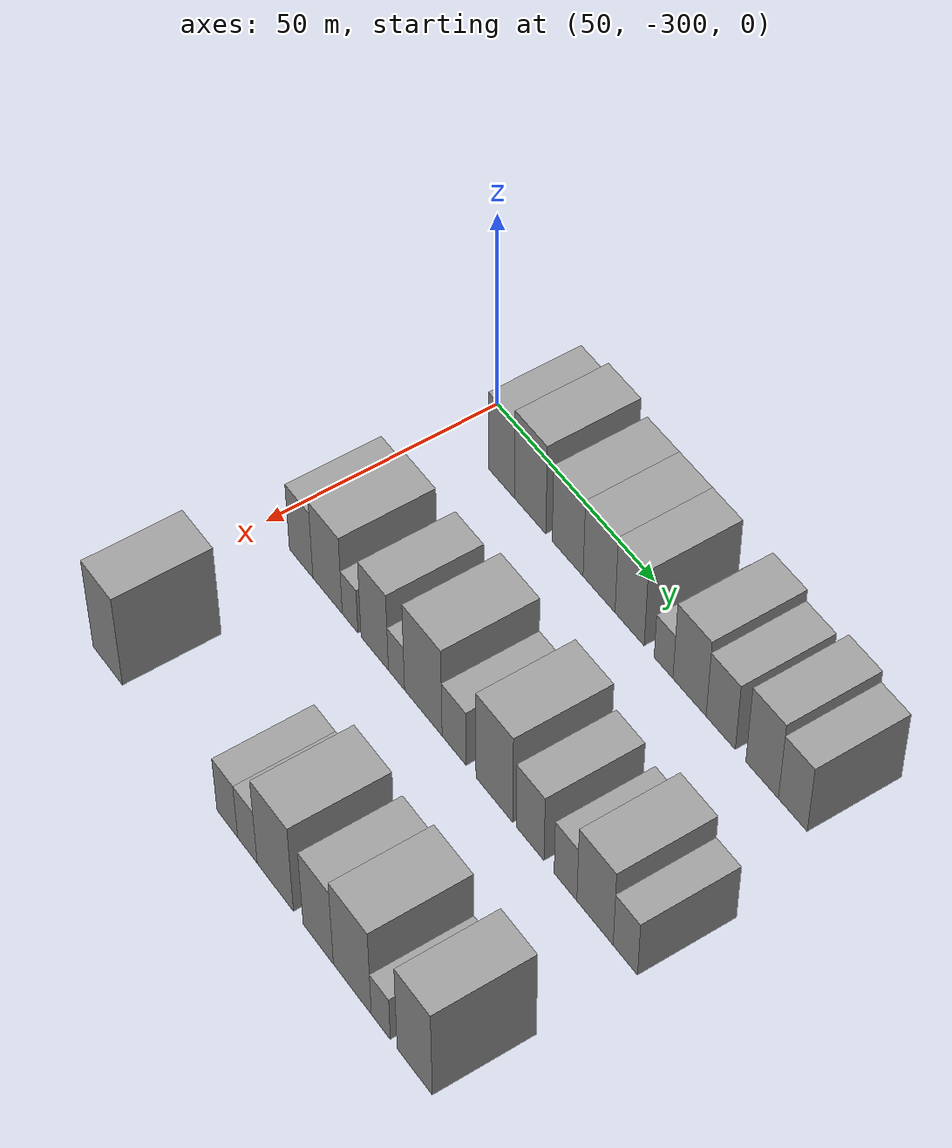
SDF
<sdf version="1.6">
 <world name="default">
  <model name="building_11">
   <static>1</static>
   <pose>50.0000 -283.8956 0 0.000000 0.000000 0.000000</pose>
   <link name="link">
    <pose>0 0 10.50 0 0 0</pose>
    <collision name="collision"><geometry><box><size>20.0000 8.4090 21.0000</size></box></geometry></collision>
    <visual name="visual">
     <cast_shadows>0</cast_shadows>
     <geometry><box><size>20.0000 8.4090 21.0000</size></box></geometry>
     <material>
      <script>
       <uri>model://grey_wall/materials/scripts</uri>
       <uri>model://grey_wall/materials/textures</uri>
       <name>vrc/grey_wall</name>
      </script>
     </material>
    </visual>
   </link>
  </model>
  <model name="building_12">
   <static>1</static>
   <pose>50.0000 -274.6847 0 0.000000 0.000000 0.000000</pose>
   <link name="link">
    <pose>0 0 12.00 0 0 0</pose>
    <collision name="collision"><geometry><box><size>20.0000 10.0127 24.0000</size></box></geometry></collision>
    <visual name="visual">
     <cast_shadows>0</cast_shadows>
     <geometry><box><size>20.0000 10.0127 24.0000</size></box></geometry>
     <material>
      <script>
       <uri>model://grey_wall/materials/scripts</uri>
       <uri>model://grey_wall/materials/textures</uri>
       <name>vrc/grey_wall</name>
      </script>
     </material>
    </visual>
   </link>
  </model>
  <model name="building_13">
   <static>1</static>
   <pose>50.0000 -262.8253 0 0.000000 0.000000 0.000000</pose>
   <link name="link">
    <pose>0 0 10.50 0 0 0</pose>
    <collision name="collision"><geometry><box><size>20.0000 9.7060 21.0000</size></box></geometry></collision>
    <visual name="visual">
     <cast_shadows>0</cast_shadows>
     <geometry><box><size>20.0000 9.7060 21.0000</size></box></geometry>
     <material>
      <script>
       <uri>model://grey_wall/materials/scripts</uri>
       <uri>model://grey_wall/materials/textures</uri>
       <name>vrc/grey_wall</name>
      </script>
     </material>
    </visual>
   </link>
  </model>
  <model name="building_14">
   <static>1</static>
   <pose>50.0000 -253.0473 0 0.000000 0.000000 0.000000</pose>
   <link name="link">
    <pose>0 0 10.50 0 0 0</pose>
    <collision name="collision"><geometry><box><size>20.0000 9.8501 21.0000</size></box></geometry></collision>
    <visual name="visual">
     <cast_shadows>0</cast_shadows>
     <geometry><box><size>20.0000 9.8501 21.0000</size></box></geometry>
     <material>
      <script>
       <uri>model://grey_wall/materials/scripts</uri>
       <uri>model://grey_wall/materials/textures</uri>
       <name>vrc/grey_wall</name>
      </script>
     </material>
    </visual>
   </link>
  </model>
  <model name="building_15">
   <static>1</static>
   <pose>50.0000 -243.6932 0 0.000000 0.000000 0.000000</pose>
   <link name="link">
    <pose>0 0 10.50 0 0 0</pose>
    <collision name="collision"><geometry><box><size>20.0000 8.8581 21.0000</size></box></geometry></collision>
    <visual name="visual">
     <cast_shadows>0</cast_shadows>
     <geometry><box><size>20.0000 8.8581 21.0000</size></box></geometry>
     <material>
      <script>
       <uri>model://grey_wall/materials/scripts</uri>
       <uri>model://grey_wall/materials/textures</uri>
       <name>vrc/grey_wall</name>
      </script>
     </material>
    </visual>
   </link>
  </model>
  <model name="building_16">
   <static>1</static>
   <pose>50.0000 -233.4718 0 0.000000 0.000000 0.000000</pose>
   <link name="link">
    <pose>0 0 6.00 0 0 0</pose>
    <collision name="collision"><geometry><box><size>20.0000 5.5846 12.0000</size></box></geometry></collision>
    <visual name="visual">
     <cast_shadows>0</cast_shadows>
     <geometry><box><size>20.0000 5.5846 12.0000</size></box></geometry>
     <material>
      <script>
       <uri>model://grey_wall/materials/scripts</uri>
       <uri>model://grey_wall/materials/textures</uri>
       <name>vrc/grey_wall</name>
      </script>
     </material>
    </visual>
   </link>
  </model>
  <model name="building_17">
   <static>1</static>
   <pose>50.0000 -225.7855 0 0.000000 0.000000 0.000000</pose>
   <link name="link">
    <pose>0 0 10.50 0 0 0</pose>
    <collision name="collision"><geometry><box><size>20.0000 9.7880 21.0000</size></box></geometry></collision>
    <visual name="visual">
     <cast_shadows>0</cast_shadows>
     <geometry><box><size>20.0000 9.7880 21.0000</size></box></geometry>
     <material>
      <script>
       <uri>model://grey_wall/materials/scripts</uri>
       <uri>model://grey_wall/materials/textures</uri>
       <name>vrc/grey_wall</name>
      </script>
     </material>
    </visual>
   </link>
  </model>
  <model name="building_18">
   <static>1</static>
   <pose>50.0000 -216.6525 0 0.000000 0.000000 0.000000</pose>
   <link name="link">
    <pose>0 0 9.00 0 0 0</pose>
    <collision name="collision"><geometry><box><size>20.0000 8.4779 18.0000</size></box></geometry></collision>
    <visual name="visual">
     <cast_shadows>0</cast_shadows>
     <geometry><box><size>20.0000 8.4779 18.0000</size></box></geometry>
     <material>
      <script>
       <uri>model://grey_wall/materials/scripts</uri>
       <uri>model://grey_wall/materials/textures</uri>
       <name>vrc/grey_wall</name>
      </script>
     </material>
    </visual>
   </link>
  </model>
  <model name="building_19">
   <static>1</static>
   <pose>50.0000 -204.7900 0 0.000000 0.000000 0.000000</pose>
   <link name="link">
    <pose>0 0 10.50 0 0 0</pose>
    <collision name="collision"><geometry><box><size>20.0000 9.2471 21.0000</size></box></geometry></collision>
    <visual name="visual">
     <cast_shadows>0</cast_shadows>
     <geometry><box><size>20.0000 9.2471 21.0000</size></box></geometry>
     <material>
      <script>
       <uri>model://grey_wall/materials/scripts</uri>
       <uri>model://grey_wall/materials/textures</uri>
       <name>vrc/grey_wall</name>
      </script>
     </material>
    </visual>
   </link>
  </model>
  <model name="building_20">
   <static>1</static>
   <pose>50.0000 -196.1114 0 0.000000 0.000000 0.000000</pose>
   <link name="link">
    <pose>0 0 9.00 0 0 0</pose>
    <collision name="collision"><geometry><box><size>20.0000 8.1101 18.0000</size></box></geometry></collision>
    <visual name="visual">
     <cast_shadows>0</cast_shadows>
     <geometry><box><size>20.0000 8.1101 18.0000</size></box></geometry>
     <material>
      <script>
       <uri>model://grey_wall/materials/scripts</uri>
       <uri>model://grey_wall/materials/textures</uri>
       <name>vrc/grey_wall</name>
      </script>
     </material>
    </visual>
   </link>
  </model>
  <model name="building_91">
   <static>1</static>
   <pose>90.0000 -288.3225 0 0.000000 0.000000 0.000000</pose>
   <link name="link">
    <pose>0 0 9.00 0 0 0</pose>
    <collision name="collision"><geometry><box><size>20.0000 7.8890 18.0000</size></box></geometry></collision>
    <visual name="visual">
     <cast_shadows>0</cast_shadows>
     <geometry><box><size>20.0000 7.8890 18.0000</size></box></geometry>
     <material>
      <script>
       <uri>model://grey_wall/materials/scripts</uri>
       <uri>model://grey_wall/materials/textures</uri>
       <name>vrc/grey_wall</name>
      </script>
     </material>
    </visual>
   </link>
  </model>
  <model name="building_92">
   <static>1</static>
   <pose>90.0000 -279.5224 0 0.000000 0.000000 0.000000</pose>
   <link name="link">
    <pose>0 0 10.50 0 0 0</pose>
    <collision name="collision"><geometry><box><size>20.0000 9.7112 21.0000</size></box></geometry></collision>
    <visual name="visual">
     <cast_shadows>0</cast_shadows>
     <geometry><box><size>20.0000 9.7112 21.0000</size></box></geometry>
     <material>
      <script>
       <uri>model://grey_wall/materials/scripts</uri>
       <uri>model://grey_wall/materials/textures</uri>
       <name>vrc/grey_wall</name>
      </script>
     </material>
    </visual>
   </link>
  </model>
  <model name="building_93">
   <static>1</static>
   <pose>90.0000 -272.1001 0 0.000000 0.000000 0.000000</pose>
   <link name="link">
    <pose>0 0 6.00 0 0 0</pose>
    <collision name="collision"><geometry><box><size>20.0000 5.1333 12.0000</size></box></geometry></collision>
    <visual name="visual">
     <cast_shadows>0</cast_shadows>
     <geometry><box><size>20.0000 5.1333 12.0000</size></box></geometry>
     <material>
      <script>
       <uri>model://grey_wall/materials/scripts</uri>
       <uri>model://grey_wall/materials/textures</uri>
       <name>vrc/grey_wall</name>
      </script>
     </material>
    </visual>
   </link>
  </model>
  <model name="building_94">
   <static>1</static>
   <pose>90.0000 -264.1201 0 0.000000 0.000000 0.000000</pose>
   <link name="link">
    <pose>0 0 10.50 0 0 0</pose>
    <collision name="collision"><geometry><box><size>20.0000 8.8268 21.0000</size></box></geometry></collision>
    <visual name="visual">
     <cast_shadows>0</cast_shadows>
     <geometry><box><size>20.0000 8.8268 21.0000</size></box></geometry>
     <material>
      <script>
       <uri>model://grey_wall/materials/scripts</uri>
       <uri>model://grey_wall/materials/textures</uri>
       <name>vrc/grey_wall</name>
      </script>
     </material>
    </visual>
   </link>
  </model>
  <model name="building_95">
   <static>1</static>
   <pose>90.0000 -257.1344 0 0.000000 0.000000 0.000000</pose>
   <link name="link">
    <pose>0 0 6.00 0 0 0</pose>
    <collision name="collision"><geometry><box><size>20.0000 5.1446 12.0000</size></box></geometry></collision>
    <visual name="visual">
     <cast_shadows>0</cast_shadows>
     <geometry><box><size>20.0000 5.1446 12.0000</size></box></geometry>
     <material>
      <script>
       <uri>model://grey_wall/materials/scripts</uri>
       <uri>model://grey_wall/materials/textures</uri>
       <name>vrc/grey_wall</name>
      </script>
     </material>
    </visual>
   </link>
  </model>
  <model name="building_96">
   <static>1</static>
   <pose>90.0000 -248.6528 0 0.000000 0.000000 0.000000</pose>
   <link name="link">
    <pose>0 0 12.00 0 0 0</pose>
    <collision name="collision"><geometry><box><size>20.0000 11.8187 24.0000</size></box></geometry></collision>
    <visual name="visual">
     <cast_shadows>0</cast_shadows>
     <geometry><box><size>20.0000 11.8187 24.0000</size></box></geometry>
     <material>
      <script>
       <uri>model://grey_wall/materials/scripts</uri>
       <uri>model://grey_wall/materials/textures</uri>
       <name>vrc/grey_wall</name>
      </script>
     </material>
    </visual>
   </link>
  </model>
  <model name="building_97">
   <static>1</static>
   <pose>90.0000 -239.0171 0 0.000000 0.000000 0.000000</pose>
   <link name="link">
    <pose>0 0 7.50 0 0 0</pose>
    <collision name="collision"><geometry><box><size>20.0000 7.4526 15.0000</size></box></geometry></collision>
    <visual name="visual">
     <cast_shadows>0</cast_shadows>
     <geometry><box><size>20.0000 7.4526 15.0000</size></box></geometry>
     <material>
      <script>
       <uri>model://grey_wall/materials/scripts</uri>
       <uri>model://grey_wall/materials/textures</uri>
       <name>vrc/grey_wall</name>
      </script>
     </material>
    </visual>
   </link>
  </model>
  <model name="building_98">
   <static>1</static>
   <pose>90.0000 -226.7217 0 0.000000 0.000000 0.000000</pose>
   <link name="link">
    <pose>0 0 12.00 0 0 0</pose>
    <collision name="collision"><geometry><box><size>20.0000 11.1382 24.0000</size></box></geometry></collision>
    <visual name="visual">
     <cast_shadows>0</cast_shadows>
     <geometry><box><size>20.0000 11.1382 24.0000</size></box></geometry>
     <material>
      <script>
       <uri>model://grey_wall/materials/scripts</uri>
       <uri>model://grey_wall/materials/textures</uri>
       <name>vrc/grey_wall</name>
      </script>
     </material>
    </visual>
   </link>
  </model>
  <model name="building_99">
   <static>1</static>
   <pose>90.0000 -216.0159 0 0.000000 0.000000 0.000000</pose>
   <link name="link">
    <pose>0 0 9.00 0 0 0</pose>
    <collision name="collision"><geometry><box><size>20.0000 8.2735 18.0000</size></box></geometry></collision>
    <visual name="visual">
     <cast_shadows>0</cast_shadows>
     <geometry><box><size>20.0000 8.2735 18.0000</size></box></geometry>
     <material>
      <script>
       <uri>model://grey_wall/materials/scripts</uri>
       <uri>model://grey_wall/materials/textures</uri>
       <name>vrc/grey_wall</name>
      </script>
     </material>
    </visual>
   </link>
  </model>
  <model name="building_100">
   <static>1</static>
   <pose>90.0000 -205.5693 0 0.000000 0.000000 0.000000</pose>
   <link name="link">
    <pose>0 0 7.50 0 0 0</pose>
    <collision name="collision"><geometry><box><size>20.0000 6.6197 15.0000</size></box></geometry></collision>
    <visual name="visual">
     <cast_shadows>0</cast_shadows>
     <geometry><box><size>20.0000 6.6197 15.0000</size></box></geometry>
     <material>
      <script>
       <uri>model://grey_wall/materials/scripts</uri>
       <uri>model://grey_wall/materials/textures</uri>
       <name>vrc/grey_wall</name>
      </script>
     </material>
    </visual>
   </link>
  </model>
  <model name="building_101">
   <static>1</static>
   <pose>90.0000 -197.0419 0 0.000000 0.000000 0.000000</pose>
   <link name="link">
    <pose>0 0 10.50 0 0 0</pose>
    <collision name="collision"><geometry><box><size>20.0000 10.4352 21.0000</size></box></geometry></collision>
    <visual name="visual">
     <cast_shadows>0</cast_shadows>
     <geometry><box><size>20.0000 10.4352 21.0000</size></box></geometry>
     <material>
      <script>
       <uri>model://grey_wall/materials/scripts</uri>
       <uri>model://grey_wall/materials/textures</uri>
       <name>vrc/grey_wall</name>
      </script>
     </material>
    </visual>
   </link>
  </model>
  <model name="building_102">
   <static>1</static>
   <pose>90.0000 -188.3653 0 0.000000 0.000000 0.000000</pose>
   <link name="link">
    <pose>0 0 7.50 0 0 0</pose>
    <collision name="collision"><geometry><box><size>20.0000 6.9178 15.0000</size></box></geometry></collision>
    <visual name="visual">
     <cast_shadows>0</cast_shadows>
     <geometry><box><size>20.0000 6.9178 15.0000</size></box></geometry>
     <material>
      <script>
       <uri>model://grey_wall/materials/scripts</uri>
       <uri>model://grey_wall/materials/textures</uri>
       <name>vrc/grey_wall</name>
      </script>
     </material>
    </visual>
   </link>
  </model>
  <model name="building_173">
   <static>1</static>
   <pose>130.0000 -287.7583 0 0.000000 0.000000 0.000000</pose>
   <link name="link">
    <pose>0 0 12.00 0 0 0</pose>
    <collision name="collision"><geometry><box><size>20.0000 10.1590 24.0000</size></box></geometry></collision>
    <visual name="visual">
     <cast_shadows>0</cast_shadows>
     <geometry><box><size>20.0000 10.1590 24.0000</size></box></geometry>
     <material>
      <script>
       <uri>model://grey_wall/materials/scripts</uri>
       <uri>model://grey_wall/materials/textures</uri>
       <name>vrc/grey_wall</name>
      </script>
     </material>
    </visual>
   </link>
  </model>
  <model name="building_174">
   <static>1</static>
   <pose>130.0000 -247.6277 0 0.000000 0.000000 0.000000</pose>
   <link name="link">
    <pose>0 0 7.50 0 0 0</pose>
    <collision name="collision"><geometry><box><size>20.0000 6.7007 15.0000</size></box></geometry></collision>
    <visual name="visual">
     <cast_shadows>0</cast_shadows>
     <geometry><box><size>20.0000 6.7007 15.0000</size></box></geometry>
     <material>
      <script>
       <uri>model://grey_wall/materials/scripts</uri>
       <uri>model://grey_wall/materials/textures</uri>
       <name>vrc/grey_wall</name>
      </script>
     </material>
    </visual>
   </link>
  </model>
  <model name="building_175">
   <static>1</static>
   <pose>130.0000 -241.1526 0 0.000000 0.000000 0.000000</pose>
   <link name="link">
    <pose>0 0 7.50 0 0 0</pose>
    <collision name="collision"><geometry><box><size>20.0000 6.2496 15.0000</size></box></geometry></collision>
    <visual name="visual">
     <cast_shadows>0</cast_shadows>
     <geometry><box><size>20.0000 6.2496 15.0000</size></box></geometry>
     <material>
      <script>
       <uri>model://grey_wall/materials/scripts</uri>
       <uri>model://grey_wall/materials/textures</uri>
       <name>vrc/grey_wall</name>
      </script>
     </material>
    </visual>
   </link>
  </model>
  <model name="building_176">
   <static>1</static>
   <pose>130.0000 -232.3205 0 0.000000 0.000000 0.000000</pose>
   <link name="link">
    <pose>0 0 12.00 0 0 0</pose>
    <collision name="collision"><geometry><box><size>20.0000 11.4146 24.0000</size></box></geometry></collision>
    <visual name="visual">
     <cast_shadows>0</cast_shadows>
     <geometry><box><size>20.0000 11.4146 24.0000</size></box></geometry>
     <material>
      <script>
       <uri>model://grey_wall/materials/scripts</uri>
       <uri>model://grey_wall/materials/textures</uri>
       <name>vrc/grey_wall</name>
      </script>
     </material>
    </visual>
   </link>
  </model>
  <model name="building_177">
   <static>1</static>
   <pose>130.0000 -218.9532 0 0.000000 0.000000 0.000000</pose>
   <link name="link">
    <pose>0 0 10.50 0 0 0</pose>
    <collision name="collision"><geometry><box><size>20.0000 9.3200 21.0000</size></box></geometry></collision>
    <visual name="visual">
     <cast_shadows>0</cast_shadows>
     <geometry><box><size>20.0000 9.3200 21.0000</size></box></geometry>
     <material>
      <script>
       <uri>model://grey_wall/materials/scripts</uri>
       <uri>model://grey_wall/materials/textures</uri>
       <name>vrc/grey_wall</name>
      </script>
     </material>
    </visual>
   </link>
  </model>
  <model name="building_178">
   <static>1</static>
   <pose>130.0000 -208.5608 0 0.000000 0.000000 0.000000</pose>
   <link name="link">
    <pose>0 0 12.00 0 0 0</pose>
    <collision name="collision"><geometry><box><size>20.0000 11.4648 24.0000</size></box></geometry></collision>
    <visual name="visual">
     <cast_shadows>0</cast_shadows>
     <geometry><box><size>20.0000 11.4648 24.0000</size></box></geometry>
     <material>
      <script>
       <uri>model://grey_wall/materials/scripts</uri>
       <uri>model://grey_wall/materials/textures</uri>
       <name>vrc/grey_wall</name>
      </script>
     </material>
    </visual>
   </link>
  </model>
  <model name="building_179">
   <static>1</static>
   <pose>130.0000 -199.9983 0 0.000000 0.000000 0.000000</pose>
   <link name="link">
    <pose>0 0 6.00 0 0 0</pose>
    <collision name="collision"><geometry><box><size>20.0000 5.6602 12.0000</size></box></geometry></collision>
    <visual name="visual">
     <cast_shadows>0</cast_shadows>
     <geometry><box><size>20.0000 5.6602 12.0000</size></box></geometry>
     <material>
      <script>
       <uri>model://grey_wall/materials/scripts</uri>
       <uri>model://grey_wall/materials/textures</uri>
       <name>vrc/grey_wall</name>
      </script>
     </material>
    </visual>
   </link>
  </model>
  <model name="building_180">
   <static>1</static>
   <pose>130.0000 -190.0181 0 0.000000 0.000000 0.000000</pose>
   <link name="link">
    <pose>0 0 12.00 0 0 0</pose>
    <collision name="collision"><geometry><box><size>20.0000 10.3001 24.0000</size></box></geometry></collision>
    <visual name="visual">
     <cast_shadows>0</cast_shadows>
     <geometry><box><size>20.0000 10.3001 24.0000</size></box></geometry>
     <material>
      <script>
       <uri>model://grey_wall/materials/scripts</uri>
       <uri>model://grey_wall/materials/textures</uri>
       <name>vrc/grey_wall</name>
      </script>
     </material>
    </visual>
   </link>
  </model>
 </world>
</sdf>
